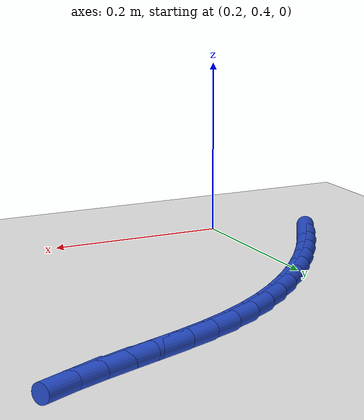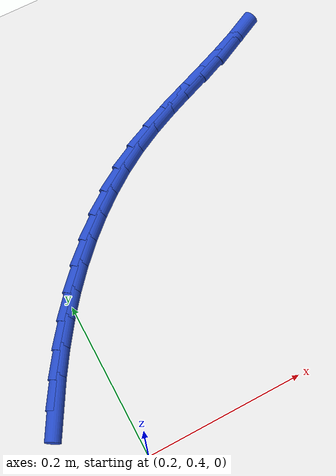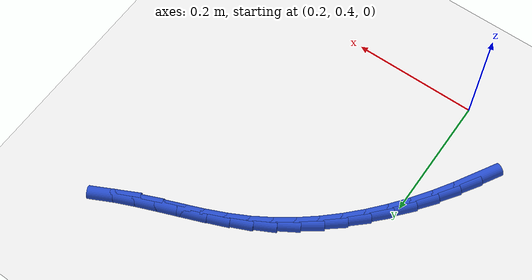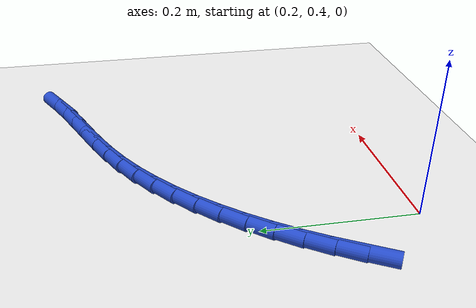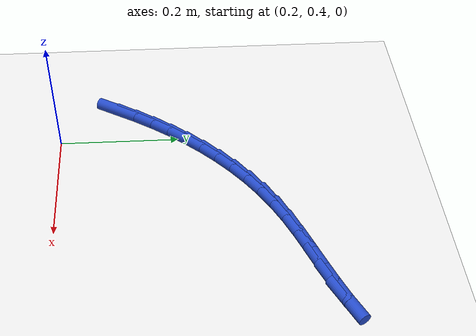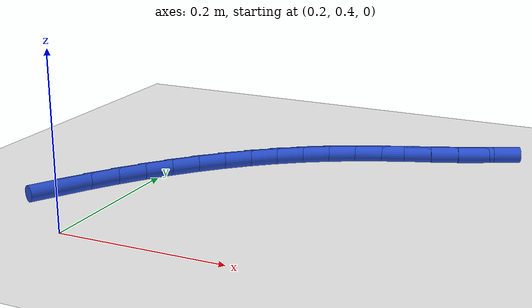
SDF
<sdf version="1.6">
 <world name="default">
  <model name="ground_plane">
   <static>1</static>
   <link name="link">
    <collision name="collision">
     <geometry><plane><normal>0 0 1</normal><size>100 100</size></plane></geometry>
     <surface><friction><ode><mu>100</mu><mu2>50</mu2></ode></friction></surface>
    </collision>
    <visual name="visual">
     <cast_shadows>0</cast_shadows>
     <geometry><plane><normal>0 0 1</normal><size>100 100</size></plane></geometry>
     <material>
      <script><uri>file://media/materials/scripts/gazebo.material</uri><name>Gazebo/WhiteGlow</name></script>
     </material>
    </visual>
   </link>
  </model>
  <model name="line">
   <link name="link_15">
    <pose>0.13010186490701037 0.49850613398140997 0.01 0 1.57 1.0402296142396255</pose>
    <collision name="collision">
     <geometry><cylinder><radius>0.01</radius><length>0.08</length></cylinder></geometry>
    </collision>
    <visual name="visual">
     <material>
      <script><name>Gazebo/Blue</name><uri>file://media/materials/scripts/gazebo.material</uri></script>
     </material>
     <geometry><cylinder><radius>0.01</radius><length>0.08</length></cylinder></geometry>
    </visual>
   </link>
   <link name="link_16">
    <pose>0.1480318590687378 0.529068006030357 0.01 0 1.57 0.9978681185886357</pose>
    <collision name="collision">
     <geometry><cylinder><radius>0.01</radius><length>0.08</length></cylinder></geometry>
    </collision>
    <visual name="visual">
     <material>
      <script><name>Gazebo/Blue</name><uri>file://media/materials/scripts/gazebo.material</uri></script>
     </material>
     <geometry><cylinder><radius>0.01</radius><length>0.08</length></cylinder></geometry>
    </visual>
   </link>
   <link name="link_17">
    <pose>0.16715753838814087 0.5587152777247519 0.01 0 1.57 0.9528932970076146</pose>
    <collision name="collision">
     <geometry><cylinder><radius>0.01</radius><length>0.08</length></cylinder></geometry>
    </collision>
    <visual name="visual">
     <material>
      <script><name>Gazebo/Blue</name><uri>file://media/materials/scripts/gazebo.material</uri></script>
     </material>
     <geometry><cylinder><radius>0.01</radius><length>0.08</length></cylinder></geometry>
    </visual>
   </link>
   <link name="link_18">
    <pose>0.18748907571797213 0.5873211085688868 0.01 0 1.57 0.9050638921609957</pose>
    <collision name="collision">
     <geometry><cylinder><radius>0.01</radius><length>0.08</length></cylinder></geometry>
    </collision>
    <visual name="visual">
     <material>
      <script><name>Gazebo/Blue</name><uri>file://media/materials/scripts/gazebo.material</uri></script>
     </material>
     <geometry><cylinder><radius>0.01</radius><length>0.08</length></cylinder></geometry>
    </visual>
   </link>
   <link name="link_19">
    <pose>0.20903664391098428 0.614758658067053 0.01 0 1.57 0.8541554583201467</pose>
    <collision name="collision">
     <geometry><cylinder><radius>0.01</radius><length>0.08</length></cylinder></geometry>
    </collision>
    <visual name="visual">
     <material>
      <script><name>Gazebo/Blue</name><uri>file://media/materials/scripts/gazebo.material</uri></script>
     </material>
     <geometry><cylinder><radius>0.01</radius><length>0.08</length></cylinder></geometry>
    </visual>
   </link>
   <link name="link_20">
    <pose>0.23181041581992992 0.6409010857235428 0.01 0 1.57 0.7999735295833246</pose>
    <collision name="collision">
     <geometry><cylinder><radius>0.01</radius><length>0.08</length></cylinder></geometry>
    </collision>
    <visual name="visual">
     <material>
      <script><name>Gazebo/Blue</name><uri>file://media/materials/scripts/gazebo.material</uri></script>
     </material>
     <geometry><cylinder><radius>0.01</radius><length>0.08</length></cylinder></geometry>
    </visual>
   </link>
   <link name="link_21">
    <pose>0.2558205642975616 0.6656215510426478 0.01 0 1.57 0.7423707199742395</pose>
    <collision name="collision">
     <geometry><cylinder><radius>0.01</radius><length>0.08</length></cylinder></geometry>
    </collision>
    <visual name="visual">
     <material>
      <script><name>Gazebo/Blue</name><uri>file://media/materials/scripts/gazebo.material</uri></script>
     </material>
     <geometry><cylinder><radius>0.01</radius><length>0.08</length></cylinder></geometry>
    </visual>
   </link>
   <link name="link_22">
    <pose>0.28107726219663204 0.6887932135286594 0.01 0 1.57 0.6812675363874473</pose>
    <collision name="collision">
     <geometry><cylinder><radius>0.01</radius><length>0.08</length></cylinder></geometry>
    </collision>
    <visual name="visual">
     <material>
      <script><name>Gazebo/Blue</name><uri>file://media/materials/scripts/gazebo.material</uri></script>
     </material>
     <geometry><cylinder><radius>0.01</radius><length>0.08</length></cylinder></geometry>
    </visual>
   </link>
   <link name="link_23">
    <pose>0.30759068236989384 0.7102892326858703 0.01 0 1.57 0.6166758501954666</pose>
    <collision name="collision">
     <geometry><cylinder><radius>0.01</radius><length>0.08</length></cylinder></geometry>
    </collision>
    <visual name="visual">
     <material>
      <script><name>Gazebo/Blue</name><uri>file://media/materials/scripts/gazebo.material</uri></script>
     </material>
     <geometry><cylinder><radius>0.01</radius><length>0.08</length></cylinder></geometry>
    </visual>
   </link>
   <link name="link_24">
    <pose>0.3353709976700996 0.7299827680185716 0.01 0 1.57 0.5487228091090631</pose>
    <collision name="collision">
     <geometry><cylinder><radius>0.01</radius><length>0.08</length></cylinder></geometry>
    </collision>
    <visual name="visual">
     <material>
      <script><name>Gazebo/Blue</name><uri>file://media/materials/scripts/gazebo.material</uri></script>
     </material>
     <geometry><cylinder><radius>0.01</radius><length>0.08</length></cylinder></geometry>
    </visual>
   </link>
   <link name="link_25">
    <pose>0.36442838095000185 0.7477469790310552 0.01 0 1.57 0.47883147943014925</pose>
    <collision name="collision">
     <geometry><cylinder><radius>0.01</radius><length>0.08</length></cylinder></geometry>
    </collision>
    <visual name="visual">
     <material>
      <script><name>Gazebo/Blue</name><uri>file://media/materials/scripts/gazebo.material</uri></script>
     </material>
     <geometry><cylinder><radius>0.01</radius><length>0.08</length></cylinder></geometry>
    </visual>
   </link>
   <link name="link_26">
    <pose>0.39475342067730923 0.7634895112278638 0.01 0 1.57 0.4215426536250272</pose>
    <collision name="collision">
     <geometry><cylinder><radius>0.01</radius><length>0.08</length></cylinder></geometry>
    </collision>
    <visual name="visual">
     <material>
      <script><name>Gazebo/Blue</name><uri>file://media/materials/scripts/gazebo.material</uri></script>
     </material>
     <geometry><cylinder><radius>0.01</radius><length>0.08</length></cylinder></geometry>
    </visual>
   </link>
   <link name="link_27">
    <pose>0.42609490755866697 0.7775437900208324 0.01 0 1.57 0.3861324462387729</pose>
    <collision name="collision">
     <geometry><cylinder><radius>0.01</radius><length>0.08</length></cylinder></geometry>
    </collision>
    <visual name="visual">
     <material>
      <script><name>Gazebo/Blue</name><uri>file://media/materials/scripts/gazebo.material</uri></script>
     </material>
     <geometry><cylinder><radius>0.01</radius><length>0.08</length></cylinder></geometry>
    </visual>
   </link>
   <link name="link_28">
    <pose>0.45803865148050993 0.7905302325549503 0.01 0 1.57 0.372238912847604</pose>
    <collision name="collision">
     <geometry><cylinder><radius>0.01</radius><length>0.08</length></cylinder></geometry>
    </collision>
    <visual name="visual">
     <material>
      <script><name>Gazebo/Blue</name><uri>file://media/materials/scripts/gazebo.material</uri></script>
     </material>
     <geometry><cylinder><radius>0.01</radius><length>0.08</length></cylinder></geometry>
    </visual>
   </link>
   <link name="link_29">
    <pose>0.49016741432837224 0.8030746231776777 0.01 0 1.57 0.3796819321892362</pose>
    <collision name="collision">
     <geometry><cylinder><radius>0.01</radius><length>0.08</length></cylinder></geometry>
    </collision>
    <visual name="visual">
     <material>
      <script><name>Gazebo/Blue</name><uri>file://media/materials/scripts/gazebo.material</uri></script>
     </material>
     <geometry><cylinder><radius>0.01</radius><length>0.08</length></cylinder></geometry>
    </visual>
   </link>
   <link name="link_30">
    <pose>0.5220639579877888 0.8158027462364752 0.01 0 1.57 0.4088333478817358</pose>
    <collision name="collision">
     <geometry><cylinder><radius>0.01</radius><length>0.08</length></cylinder></geometry>
    </collision>
    <visual name="visual">
     <material>
      <script><name>Gazebo/Blue</name><uri>file://media/materials/scripts/gazebo.material</uri></script>
     </material>
     <geometry><cylinder><radius>0.01</radius><length>0.08</length></cylinder></geometry>
    </visual>
   </link>
   <link name="link_31">
    <pose>0.5533110443442938 0.8293403860788024 0.01 0 1.57 0.46053468392387037</pose>
    <collision name="collision">
     <geometry><cylinder><radius>0.01</radius><length>0.08</length></cylinder></geometry>
    </collision>
    <visual name="visual">
     <material>
      <script><name>Gazebo/Blue</name><uri>file://media/materials/scripts/gazebo.material</uri></script>
     </material>
     <geometry><cylinder><radius>0.01</radius><length>0.08</length></cylinder></geometry>
    </visual>
   </link>
  </model>
 </world>
</sdf>
